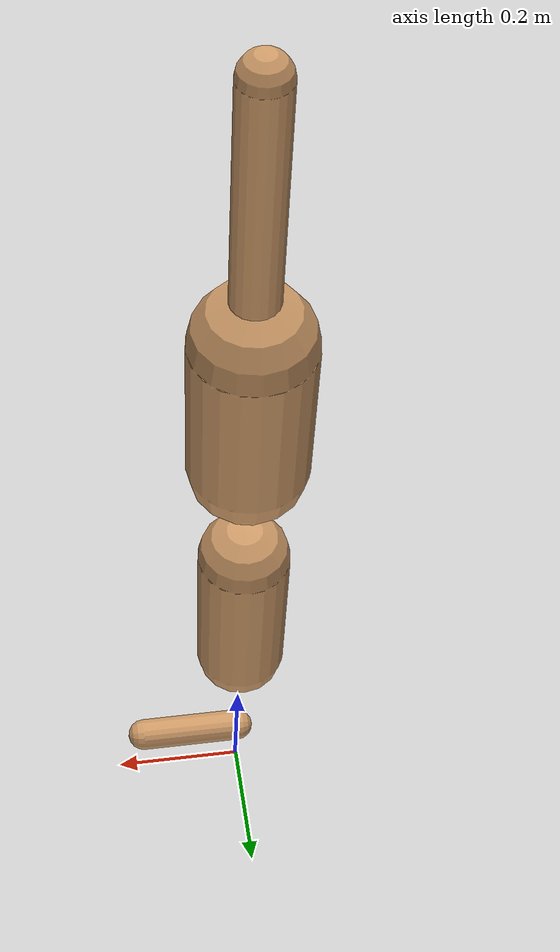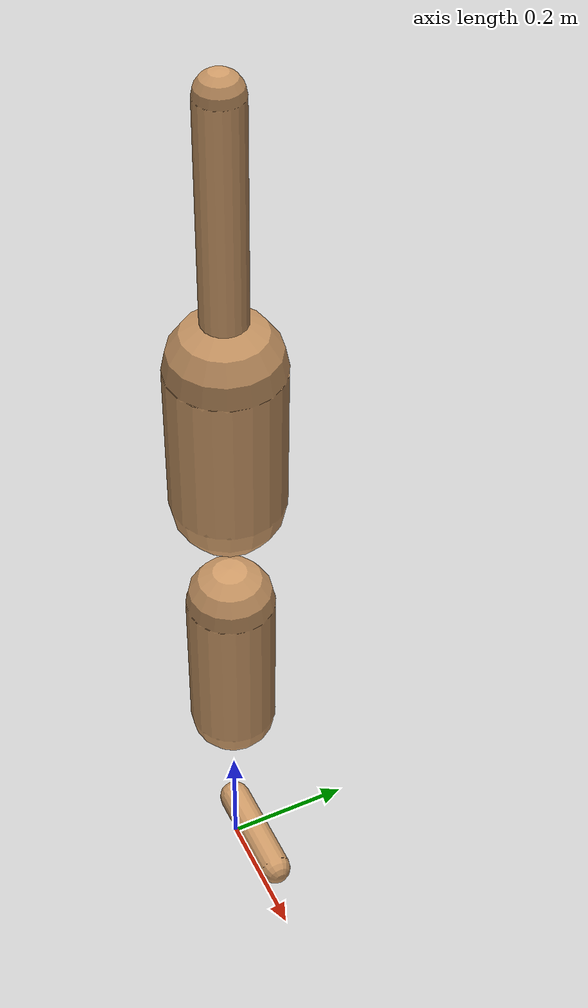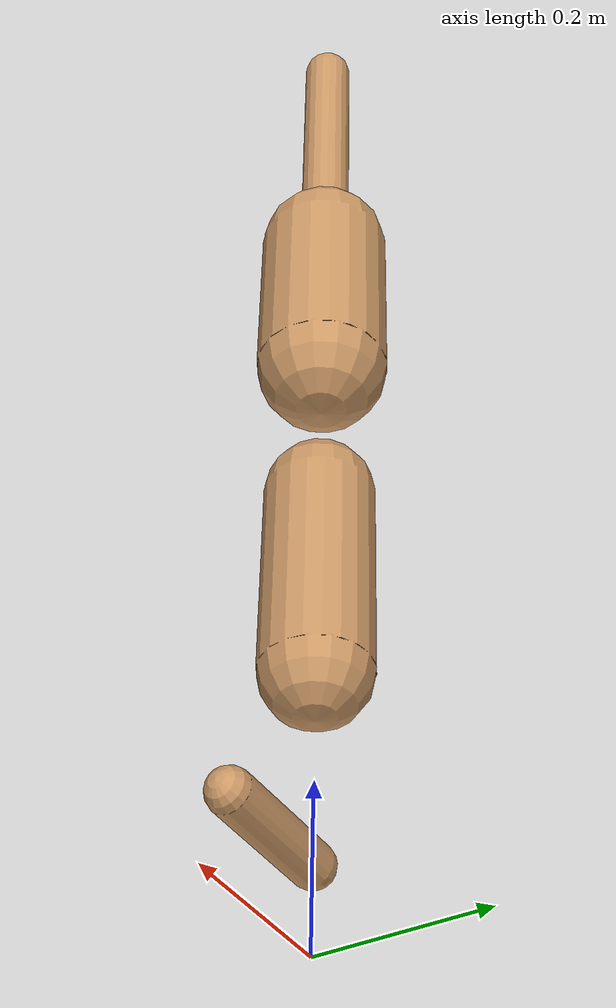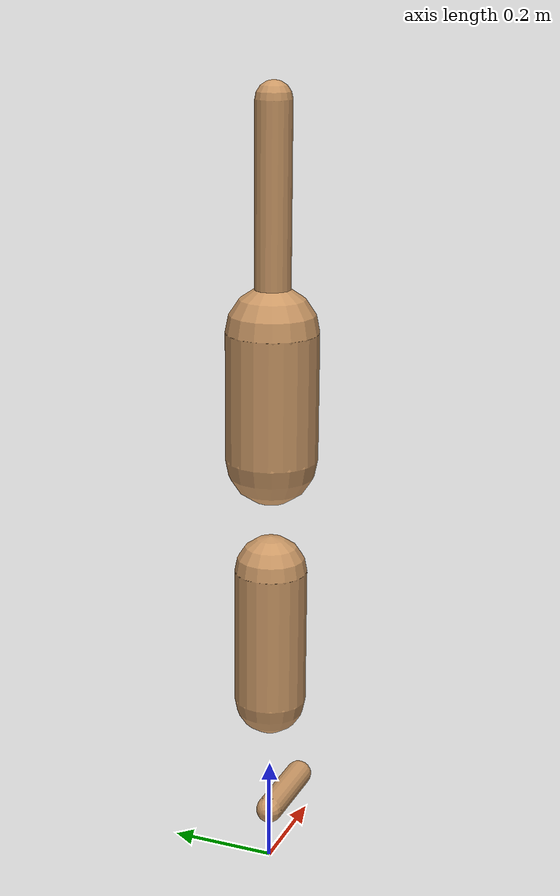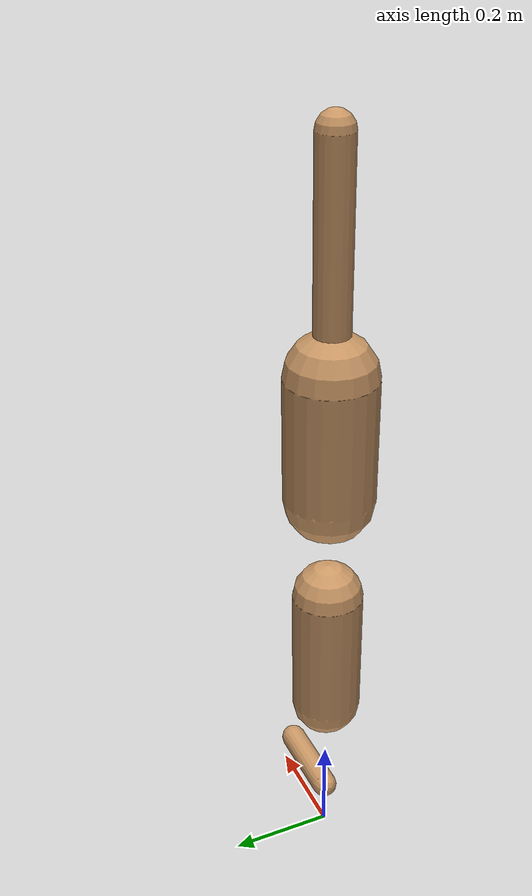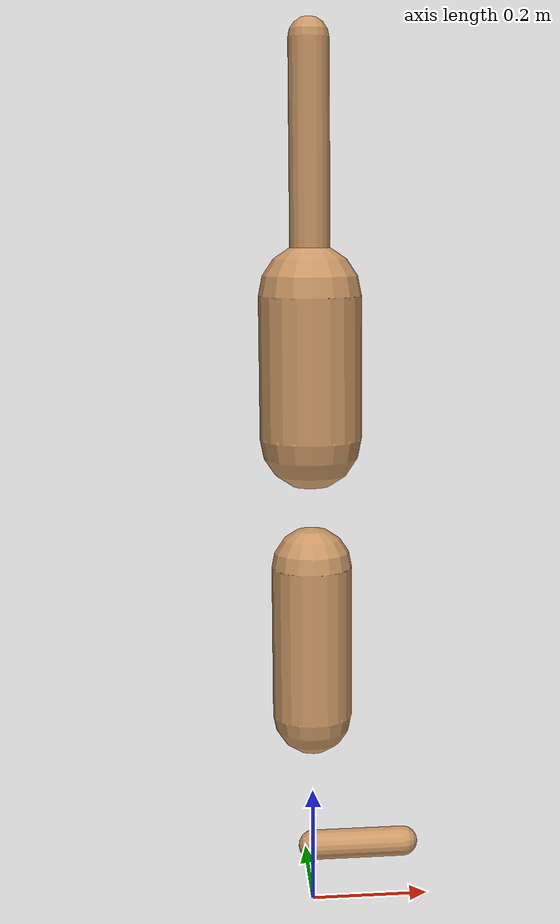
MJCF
<mujoco model="walker2d">
  <compiler angle="degree" coordinate="global" inertiafromgeom="true" />
  <default>
    <joint armature="0.01" damping=".1" limited="true" />
    <geom conaffinity="0" condim="3" contype="1" density="1000" friction="0.8 .1 .1" rgba="0.8 0.6 .4 1" />
  </default>
  <option integrator="RK4" timestep="0.002" />
  <worldbody>

    <body name="torso" pos="0 0 -0.4566867376891962">
      <joint armature="0" axis="1 0 0" damping="0" limited="false" name="ignorex" pos="0 0 0" stiffness="0" type="slide" />
      <joint armature="0" axis="0 0 1" damping="0" limited="false" name="ignorez" pos="0 0 0" ref="1.25" stiffness="0" type="slide" />
      <joint armature="0" axis="0 1 0" damping="0" limited="false" name="ignorey" pos="0 0 0" stiffness="0" type="hinge" />
      <geom fromto="0 0 1.45 0 0 1.05" name="torso_geom" size="0.03265884399668735" type="capsule" />
      <body name="thigh">
        <joint axis="0 -1 0" name="thigh_joint" pos="0 0 1.05" range="-150 0" type="hinge" />
        <geom fromto="0.0 0.0 1.05 0.0 0.0 0.8163252968001455" name="thigh_geom" size="0.08378520100290424" type="capsule" />
        <body name="leg" pos="0.0 0.0 0.21632529680014556">
          <joint axis="0 -1 0" name="leg_joint" pos="0 0 0.6" range="-150 0" type="hinge" />
          <geom fromto="0.0 0.0 0.6 0.0 0.0 0.3403614408890506" name="leg_geom" size="0.06702816080232339" type="capsule" />
          <body name="foot" pos="0.0 0.0 0.24036144088905062">
            <joint axis="0 -1 0" name="foot_joint" pos="0 0 0.1" range="-45 45" type="hinge" />
            <geom fromto="0.0 0.0 0.10000000000000002 0.15695996201842455 0.0 0.10000000000000002" name="foot_geom" size="0.0253791120481432" type="capsule" />
          </body>
        </body>
      </body>

      <body name="thigh_left">
        <joint axis="0 -1 0" name="thigh_left_joint" pos="0 0 1.05" range="-150 0" type="hinge" />
        <geom fromto="0.0 0.0 1.05 0.0 0.0 0.8163252968001455" name="thigh_left_geom" rgba=".7 .3 .6 1" size="0.08378520100290424" type="capsule" />
        <body name="leg_left" pos="0.0 0.0 0.21632529680014556">
          <joint axis="0 -1 0" name="leg_left_joint" pos="0 0 0.6" range="-150 0" type="hinge" />
          <geom fromto="0.0 0.0 0.6 0.0 0.0 0.3403614408890506" name="leg_left_geom" rgba=".7 .3 .6 1" size="0.06702816080232339" type="capsule" />
          <body name="foot_left" pos="0.0 0.0 0.24036144088905062">
            <joint axis="0 -1 0" name="foot_left_joint" pos="0 0 0.1" range="-45 45" type="hinge" />
            <geom fromto="0.0 0.0 0.10000000000000002 0.15695996201842455 0.0 0.10000000000000002" name="foot_left_geom" rgba=".7 .3 .6 1" size="0.0253791120481432" type="capsule" />
          </body>
        </body>
      </body>
    </body>
  </worldbody>
  <actuator>

    <motor ctrllimited="true" ctrlrange="-1.0 1.0" gear="100" joint="thigh_joint" />
    <motor ctrllimited="true" ctrlrange="-1.0 1.0" gear="100" joint="leg_joint" />
    <motor ctrllimited="true" ctrlrange="-1.0 1.0" gear="100" joint="foot_joint" />
    <motor ctrllimited="true" ctrlrange="-1.0 1.0" gear="100" joint="thigh_left_joint" />
    <motor ctrllimited="true" ctrlrange="-1.0 1.0" gear="100" joint="leg_left_joint" />
    <motor ctrllimited="true" ctrlrange="-1.0 1.0" gear="100" joint="foot_left_joint" />

  </actuator>
</mujoco>
